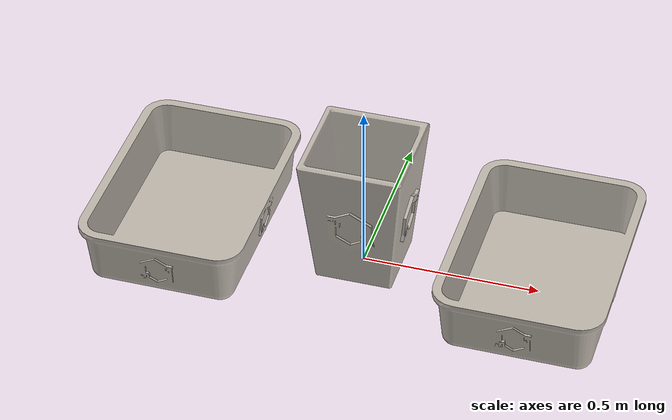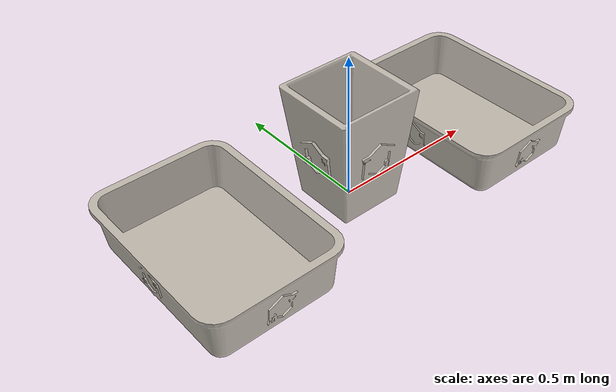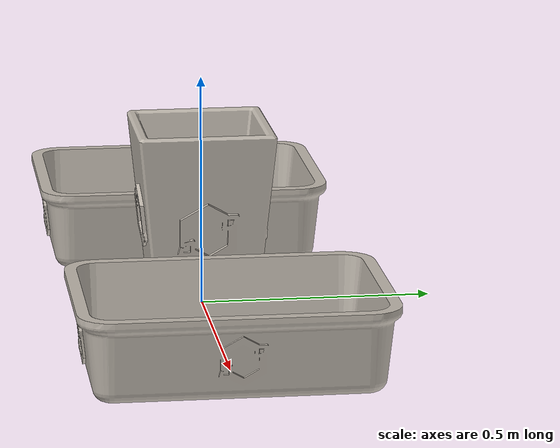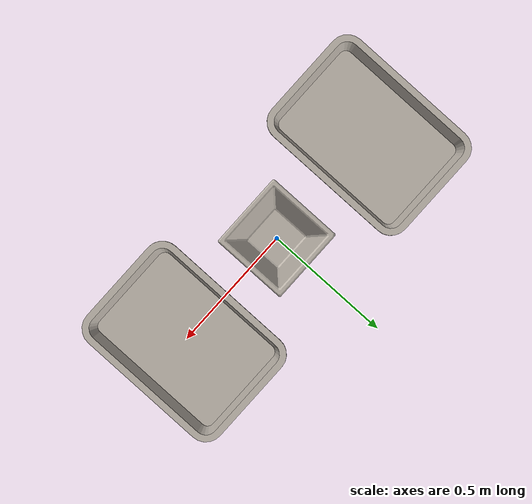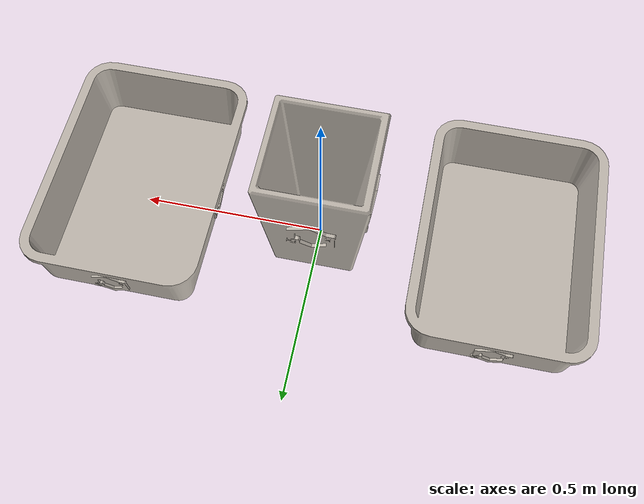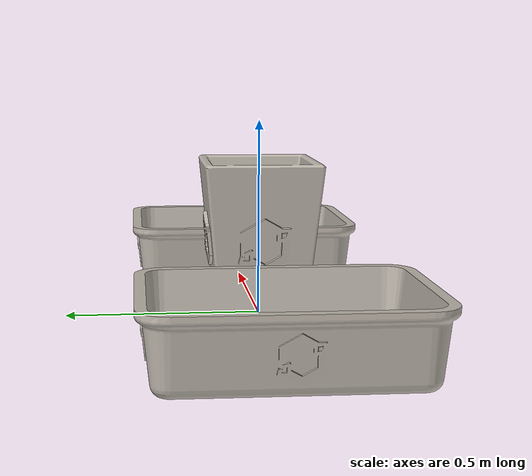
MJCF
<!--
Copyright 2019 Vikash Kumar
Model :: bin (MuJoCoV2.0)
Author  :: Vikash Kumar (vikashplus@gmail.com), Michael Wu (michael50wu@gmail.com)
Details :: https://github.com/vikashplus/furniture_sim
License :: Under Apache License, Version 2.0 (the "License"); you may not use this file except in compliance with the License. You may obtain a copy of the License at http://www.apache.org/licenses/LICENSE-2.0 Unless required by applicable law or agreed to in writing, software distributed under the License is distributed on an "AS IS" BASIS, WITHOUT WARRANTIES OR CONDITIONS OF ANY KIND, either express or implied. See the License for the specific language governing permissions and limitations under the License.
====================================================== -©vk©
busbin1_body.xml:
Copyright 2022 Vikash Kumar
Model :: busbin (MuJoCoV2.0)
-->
<mujoco model="bin">

    <compiler angle="radian" meshdir="" texturedir=""/>
    <include file="../furniture_sim/bin/bin_asset.xml"/>

    <worldbody>
        <body>
            <include file="../furniture_sim/bin/bin_body.xml" />
        </body>
        <body pos=".5 0 0">
            <include file="../furniture_sim/bin/busbin1_body.xml" />
        </body>
        <body pos="-.5 0 0">
            <include file="../furniture_sim/bin/busbin2_body.xml" />
        </body>
    </worldbody>

</mujoco>

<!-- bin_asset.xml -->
<mujocoinclude>
    <asset>
        <mesh name="bin" file="../furniture_sim/bin/meshes/bin.stl" scale="0.01 0.01 0.01" />
        <mesh name="busbin" file="../furniture_sim/bin/meshes/busbin.stl"/>
        <texture name="T_Metal_bin" type="cube" height="1" width="1" file="../furniture_sim/common/textures/metal0.png" />
        <material name="M_Metal_bin" texture="T_Metal_bin" texrepeat="3 3" reflectance="0.7" texuniform="false" />
    </asset>

    <default>
        <default class="viz_stl_Metal_bin" >
            <geom group="1" type="mesh" material="M_Metal_bin" />
        </default>
   </default>

</mujocoinclude>

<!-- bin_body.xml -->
<mujocoinclude>

    <geom class="viz_stl_Metal_bin" type="mesh" mesh="bin" euler="-1.57 0 3.14" group="1" contype="0" conaffinity="0" />
    <geom type='box' pos='-.12 0 .2' size='.01 .147 .2' euler='0 -0.0872665 0' group="3" />
    <geom type='box' pos='.12 0 .2' size='.01 .147 .2' euler='0 0.0872665 0' group="3" />
    <geom type='box' pos='0 -.12 .2' size='.01 .147 .2' euler='0.0872665 0 1.57' group="3" />
    <geom type='box' pos='0 .12 .2' size='.01 .147 .2' euler='-0.0872665 0 1.57' group="3"/>
    <geom type='box' pos='0 0 .05' size='.1 .1 .005' group="3" />

</mujocoinclude>

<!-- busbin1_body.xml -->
<mujocoinclude>

    <geom class="viz_stl_Metal_bin" type="mesh" mesh="busbin" euler="0 0 3.14" group="1" contype="0" conaffinity="0" />
    <geom type='box' pos='-.21 0 .09' size='.012 .33 .09' euler='0 -0.11 0' group="3" />
    <geom type='box' pos='.21 0 .09' size='.012 .33 .09' euler='0 0.11 0' group="3" />
    <geom type='box' pos='0 -.3 .09' size='.012 .24 .09' euler='0.11 0 1.57' group="3" />
    <geom type='box' pos='0 .3 .09' size='.012 .24 .09' euler='-0.11 0 1.57' group="3"/>
    <geom type='box' pos='0 0 .012' size='.21 .3 .012' group="3" />

</mujocoinclude>

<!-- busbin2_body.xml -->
<mujocoinclude>

    <geom class="viz_stl_Metal_bin" type="mesh" mesh="busbin" euler="0 0 3.14" group="1" contype="0" conaffinity="0"/>
    <geom type='box' pos='-.21 0 .09' size='.012 .33 .09' euler='0 -0.11 0' group="3" />
    <geom type='box' pos='.21 0 .09' size='.012 .33 .09' euler='0 0.11 0' group="3" />
    <geom type='box' pos='0 -.3 .09' size='.012 .24 .09' euler='0.11 0 1.57' group="3" />
    <geom type='box' pos='0 .3 .09' size='.012 .24 .09' euler='-0.11 0 1.57' group="3"/>
    <geom type='box' pos='0 0 .012' size='.21 .3 .012' group="3" />

</mujocoinclude>
